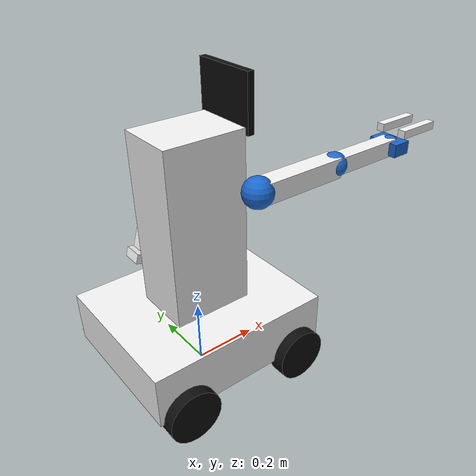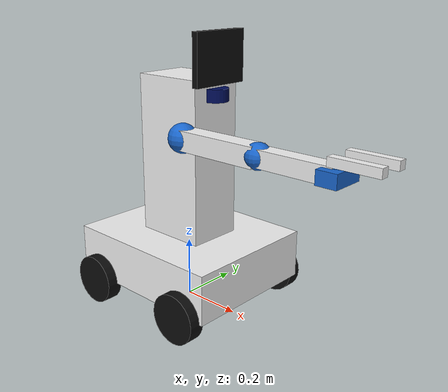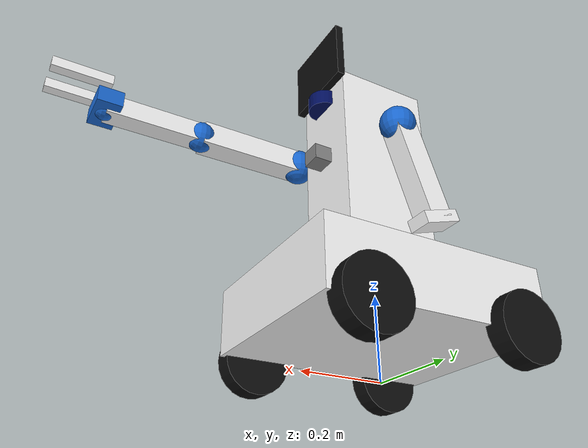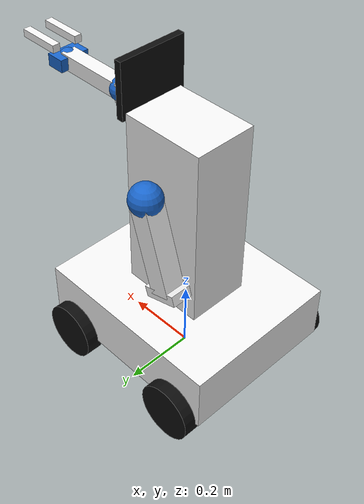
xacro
<?xml version="1.0"?>
<robot name="drift_robot" xmlns:xacro="http://www.ros.org/wiki/xacro">

  <!-- ============================================================
       MATERIAL DEFINITIONS
  ============================================================ -->
  <material name="white">
    <color rgba="0.95 0.95 0.95 1.0"/>
  </material>
  <material name="blue">
    <color rgba="0.1 0.4 0.8 1.0"/>
  </material>
  <material name="black">
    <color rgba="0.05 0.05 0.05 1.0"/>
  </material>
  <material name="gray">
    <color rgba="0.50 0.50 0.50 1.0"/>
  </material>
  <material name="dark_blue">
    <color rgba="0.0 0.05 0.35 1.0"/>
  </material>

  <!-- ============================================================
       INERTIA MACROS
  ============================================================ -->
  <!-- cx/cy/cz: centre-of-mass offset from link origin (must match visual centre) -->
  <xacro:macro name="box_inertia" params="m x y z cx:=0 cy:=0 cz:=0">
    <inertial>
      <mass value="${m}"/>
      <origin xyz="${cx} ${cy} ${cz}" rpy="0 0 0"/>
      <inertia
        ixx="${m*(y*y+z*z)/12}" ixy="0" ixz="0"
        iyy="${m*(x*x+z*z)/12}" iyz="0"
        izz="${m*(x*x+y*y)/12}"/>
    </inertial>
  </xacro:macro>

  <xacro:macro name="cylinder_inertia" params="m r h">
    <inertial>
      <mass value="${m}"/>
      <origin xyz="0 0 0" rpy="0 0 0"/>
      <inertia
        ixx="${m*(3*r*r+h*h)/12}" ixy="0" ixz="0"
        iyy="${m*(3*r*r+h*h)/12}" iyz="0"
        izz="${m*r*r/2}"/>
    </inertial>
  </xacro:macro>

  <!-- ============================================================
       BASE
  ============================================================ -->
  <link name="base_footprint"/>

  <joint name="base_footprint_joint" type="fixed">
    <parent link="base_footprint"/>
    <child  link="base_link"/>
    <!-- offset = wheel radius (0.08 m) so base_link sits at axle height
         and wheel bottoms land exactly on the ground plane -->
    <origin xyz="0 0 0.08" rpy="0 0 0"/>
  </joint>

  <!-- Chassis: 0.56 × 0.46 × 0.16 m, 23 kg -->
  <link name="base_link">
    <xacro:box_inertia m="23.0" x="0.56" y="0.46" z="0.16" cz="0.08"/>
    <visual>
      <origin xyz="0 0 0.08" rpy="0 0 0"/>
      <geometry><box size="0.56 0.46 0.16"/></geometry>
      <material name="white"/>
    </visual>
    <collision>
      <origin xyz="0 0 0.08" rpy="0 0 0"/>
      <geometry><box size="0.56 0.46 0.16"/></geometry>
    </collision>
  </link>

  <!-- ============================================================
       WHEELS  — radius 0.08 m, width 0.05 m, mass 1.6 kg
  ============================================================ -->
  <xacro:macro name="wheel" params="name x_pos y_pos">
    <link name="${name}_link">
      <xacro:cylinder_inertia m="1.6" r="0.08" h="0.05"/>
      <visual>
        <origin xyz="0 0 0" rpy="${pi/2} 0 0"/>
        <geometry><cylinder radius="0.08" length="0.05"/></geometry>
        <material name="black"/>
      </visual>
      <collision>
        <origin xyz="0 0 0" rpy="${pi/2} 0 0"/>
        <geometry><cylinder radius="0.08" length="0.05"/></geometry>
      </collision>
    </link>
    <joint name="${name}_joint" type="continuous">
      <parent link="base_link"/>
      <child  link="${name}_link"/>
      <!-- z=0: wheel centre is at base_link origin = wheel radius above ground -->
      <origin xyz="${x_pos} ${y_pos} 0" rpy="0 0 0"/>
      <axis xyz="0 1 0"/>
      <limit effort="30.0" velocity="20.0"/>
      <dynamics damping="0.2" friction="0.12"/>
    </joint>
  </xacro:macro>

  <xacro:wheel name="left_front_wheel"  x_pos=" 0.19" y_pos=" 0.24"/>
  <xacro:wheel name="right_front_wheel" x_pos=" 0.19" y_pos="-0.24"/>
  <xacro:wheel name="left_rear_wheel"   x_pos="-0.19" y_pos=" 0.24"/>
  <xacro:wheel name="right_rear_wheel"  x_pos="-0.19" y_pos="-0.24"/>

  <!-- ============================================================
       TORSO  — 0.24 × 0.18 × 0.52 m, 10 kg
  ============================================================ -->
  <link name="torso_link">
    <xacro:box_inertia m="10.0" x="0.24" y="0.18" z="0.52" cz="0.26"/>
    <visual>
      <origin xyz="0 0 0.26" rpy="0 0 0"/>
      <geometry><box size="0.24 0.18 0.52"/></geometry>
      <material name="white"/>
    </visual>
    <collision>
      <origin xyz="0 0 0.26" rpy="0 0 0"/>
      <geometry><box size="0.24 0.18 0.52"/></geometry>
    </collision>
  </link>

  <joint name="torso_joint" type="fixed">
    <parent link="base_link"/>
    <child  link="torso_link"/>
    <origin xyz="0 0 0.16" rpy="0 0 0"/>
  </joint>

  <!-- ============================================================
       FACE / DISPLAY PANEL
  ============================================================ -->
  <link name="head_panel_link">
    <xacro:box_inertia m="0.6" x="0.02" y="0.20" z="0.16"/>
    <visual>
      <origin xyz="0 0 0" rpy="0 0 0"/>
      <geometry><box size="0.02 0.20 0.16"/></geometry>
      <material name="black"/>
    </visual>
    <collision>
      <origin xyz="0 0 0" rpy="0 0 0"/>
      <geometry><box size="0.02 0.20 0.16"/></geometry>
    </collision>
  </link>

  <joint name="head_panel_joint" type="fixed">
    <parent link="torso_link"/>
    <child  link="head_panel_link"/>
    <!-- Lidar sits at Z=0.47 in torso frame (top edge Z=0.49).
         Panel bottom starts at Z=0.50, centre at Z=0.58, so it sits
         cleanly above the lidar with no overlap. -->
    <origin xyz="0.13 0 0.58" rpy="0 0 0"/>
  </joint>

  <!-- ============================================================
       CAMERA
  ============================================================ -->
  <link name="camera_link">
    <xacro:box_inertia m="0.25" x="0.05" y="0.05" z="0.04"/>
    <visual>
      <origin xyz="0 0 0" rpy="0 0 0"/>
      <geometry><box size="0.05 0.05 0.04"/></geometry>
      <material name="gray"/>
    </visual>
    <collision>
      <origin xyz="0 0 0" rpy="0 0 0"/>
      <geometry><box size="0.05 0.05 0.04"/></geometry>
    </collision>
  </link>

  <joint name="camera_joint" type="fixed">
    <parent link="torso_link"/>
    <child  link="camera_link"/>
    <origin xyz="0.14 0 0.30" rpy="0 0 0"/>
  </joint>

  <!-- Camera optical frame (ROS convention: z-forward, x-right, y-down) -->
  <link name="camera_optical_link"/>
  <joint name="camera_optical_joint" type="fixed">
    <parent link="camera_link"/>
    <child  link="camera_optical_link"/>
    <origin xyz="0 0 0" rpy="${-pi/2} 0 ${-pi/2}"/>
  </joint>

  <!-- ============================================================
       LIDAR
  ============================================================ -->
  <link name="lidar_link">
    <xacro:cylinder_inertia m="0.35" r="0.04" h="0.04"/>
    <visual>
      <origin xyz="0 0 0" rpy="0 0 0"/>
      <geometry><cylinder radius="0.04" length="0.04"/></geometry>
      <material name="dark_blue"/>
    </visual>
    <collision>
      <origin xyz="0 0 0" rpy="0 0 0"/>
      <geometry><cylinder radius="0.04" length="0.04"/></geometry>
    </collision>
  </link>

  <joint name="lidar_joint" type="fixed">
    <parent link="torso_link"/>
    <child  link="lidar_link"/>
    <origin xyz="0.12 0 0.47" rpy="0 0 0"/>
  </joint>

  <!-- ============================================================
       RIGHT ARM  — 3-DOF active arm
  ============================================================ -->

  <!-- Shoulder ball (blue) -->
  <link name="right_shoulder_link">
    <xacro:box_inertia m="1.4" x="0.08" y="0.08" z="0.08"/>
    <visual>
      <origin xyz="0 0 0" rpy="0 0 0"/>
      <geometry><sphere radius="0.045"/></geometry>
      <material name="blue"/>
    </visual>
    <collision>
      <origin xyz="0 0 0" rpy="0 0 0"/>
      <geometry><sphere radius="0.045"/></geometry>
    </collision>
  </link>

  <joint name="right_shoulder_joint" type="revolute">
    <parent link="torso_link"/>
    <child  link="right_shoulder_link"/>
    <origin xyz="0.12 -0.14 0.36" rpy="0 0 3.1416"/>
    <axis xyz="0 1 0"/>
    <limit lower="-2.4" upper="2.4" effort="20.0" velocity="1.8"/>
    <dynamics damping="1.0" friction="0.4"/>
  </joint>

  <!-- Upper arm (white) — hangs below shoulder -->
  <link name="right_upper_arm_link">
    <xacro:box_inertia m="1.5" x="0.06" y="0.06" z="0.28" cz="-0.14"/>
    <visual>
      <origin xyz="0 0 -0.14" rpy="0 0 0"/>
      <geometry><box size="0.06 0.06 0.28"/></geometry>
      <material name="white"/>
    </visual>
    <collision>
      <origin xyz="0 0 -0.14" rpy="0 0 0"/>
      <geometry><box size="0.06 0.06 0.28"/></geometry>
    </collision>
  </link>

  <!-- Elbow joint: parent frame rotated 90° in Y so the arm initially
       points straight down; spring pulls it to -1.5 rad (V elbow bend) -->
  <joint name="right_elbow_joint" type="revolute">
    <parent link="right_shoulder_link"/>
    <child  link="right_upper_arm_link"/>
    <origin xyz="0 0 0" rpy="0 1.5708 0"/>   <!-- THIS, not X rotation -->
    <axis xyz="0 1 0"/>
    <limit lower="-2.4" upper="1.4" effort="18.0" velocity="2.0"/>
    <dynamics damping="0.8" friction="0.3"/>
  </joint>

  <!-- Elbow ball (blue) — visual marker at bottom of upper arm -->
  <link name="right_elbow_vis_link">
    <xacro:cylinder_inertia m="0.05" r="0.035" h="0.04"/>
    <visual>
      <origin xyz="0 0 0" rpy="0 0 0"/>
      <geometry><sphere radius="0.038"/></geometry>
      <material name="blue"/>
    </visual>
    <collision>
      <origin xyz="0 0 0" rpy="0 0 0"/>
      <geometry><sphere radius="0.038"/></geometry>
    </collision>
  </link>

  <joint name="right_elbow_vis_joint" type="fixed">
    <parent link="right_upper_arm_link"/>
    <child  link="right_elbow_vis_link"/>
    <origin xyz="0 0 -0.28" rpy="0 0 0"/>
  </joint>

  <!-- Forearm (white) -->
  <link name="right_forearm_link">
    <xacro:box_inertia m="1.2" x="0.05" y="0.05" z="0.24" cz="-0.12"/>
    <visual>
      <origin xyz="0 0 -0.12" rpy="0 0 0"/>
      <geometry><box size="0.05 0.05 0.24"/></geometry>
      <material name="white"/>
    </visual>
    <collision>
      <origin xyz="0 0 -0.12" rpy="0 0 0"/>
      <geometry><box size="0.05 0.05 0.24"/></geometry>
    </collision>
  </link>

  <joint name="right_wrist_joint" type="revolute">
    <parent link="right_upper_arm_link"/>
    <child  link="right_forearm_link"/>
    <origin xyz="0 0 -0.28" rpy="0 0 0"/>
    <axis xyz="0 1 0"/>
    <limit lower="-2.6" upper="2.6" effort="12.0" velocity="2.4"/>
    <dynamics damping="0.5" friction="0.25"/>
  </joint>

  <!-- Wrist ball (blue) -->
  <link name="right_wrist_vis_link">
    <xacro:cylinder_inertia m="0.05" r="0.025" h="0.04"/>
    <visual>
      <origin xyz="0 0 0" rpy="0 0 0"/>
      <geometry><sphere radius="0.030"/></geometry>
      <material name="blue"/>
    </visual>
    <collision>
      <origin xyz="0 0 0" rpy="0 0 0"/>
      <geometry><sphere radius="0.030"/></geometry>
    </collision>
  </link>

  <joint name="right_wrist_vis_joint" type="fixed">
    <parent link="right_forearm_link"/>
    <child  link="right_wrist_vis_link"/>
    <origin xyz="0 0 -0.24" rpy="0 0 0"/>
  </joint>

  <!-- ============================================================
       FUNCTIONAL PARALLEL-JAW GRIPPER
  ============================================================ -->

  <!-- Gripper palm / base (blue) -->
  <link name="right_gripper_link">
    <xacro:box_inertia m="0.4" x="0.06" y="0.10" z="0.04"/>
    <visual>
      <origin xyz="0 0 0" rpy="0 0 0"/>
      <geometry><box size="0.06 0.10 0.04"/></geometry>
      <material name="blue"/>
    </visual>
    <collision>
      <origin xyz="0 0 0" rpy="0 0 0"/>
      <geometry><box size="0.06 0.10 0.04"/></geometry>
    </collision>
  </link>

  <joint name="right_gripper_joint" type="fixed">
    <parent link="right_forearm_link"/>
    <child  link="right_gripper_link"/>
    <!-- rpy pitch = pi/2 rotates the gripper palm 90° so the jaw
         opening faces outward (away from the arm) instead of downward -->
    <origin xyz="0 0 -0.24" rpy="0 ${pi/2} 0"/>
  </joint>

  <!-- Left finger — slides in +Y to open -->
  <link name="right_finger_l_link">
    <xacro:box_inertia m="0.08" x="0.14" y="0.025" z="0.025"/>
    <visual>
      <origin xyz="0.07 0 -0.025" rpy="0 0 0"/>
      <geometry><box size="0.14 0.025 0.025"/></geometry>
      <material name="white"/>
    </visual>
    <collision>
      <origin xyz="0.07 0 -0.025" rpy="0 0 0"/>
      <geometry><box size="0.14 0.025 0.025"/></geometry>
    </collision>
  </link>

  <joint name="right_finger_l_joint" type="prismatic">
    <parent link="right_gripper_link"/>
    <child  link="right_finger_l_link"/>
    <origin xyz="0  0.04 -0.02" rpy="0 0 0"/>
    <axis xyz="0 1 0"/>
    <limit lower="0.0" upper="0.05" effort="10.0" velocity="0.1"/>
    <dynamics damping="5.0" friction="1.0"/>
  </joint>

  <!-- Right finger — slides in -Y to open -->
  <link name="right_finger_r_link">
    <xacro:box_inertia m="0.08" x="0.14" y="0.025" z="0.025"/>
    <visual>
      <origin xyz="0.07 0 -0.025" rpy="0 0 0"/>
      <geometry><box size="0.14 0.025 0.025"/></geometry>
      <material name="white"/>
    </visual>
    <collision>
      <origin xyz="0.07 0 -0.025" rpy="0 0 0"/>
      <geometry><box size="0.14 0.025 0.025"/></geometry>
    </collision>
  </link>

  <joint name="right_finger_r_joint" type="prismatic">
    <parent link="right_gripper_link"/>
    <child  link="right_finger_r_link"/>
    <origin xyz="0 -0.04 -0.02" rpy="0 0 0"/>
    <axis xyz="0 -1 0"/>
    <limit lower="0.0" upper="0.05" effort="10.0" velocity="0.1"/>
    <dynamics damping="5.0" friction="1.0"/>
  </joint>

  <!-- ============================================================
       LEFT ARM  — cosmetic / static (mirrored)
  ============================================================ -->
  <link name="left_arm_cosmetic_link">
    <xacro:box_inertia m="1.4" x="0.06" y="0.06" z="0.26" cz="-0.13"/>
    <visual>
      <origin xyz="0 0 -0.13" rpy="0 0 0"/>
      <geometry><box size="0.06 0.06 0.26"/></geometry>
      <material name="white"/>
    </visual>
    <collision>
      <origin xyz="0 0 -0.13" rpy="0 0 0"/>
      <geometry><box size="0.06 0.06 0.26"/></geometry>
    </collision>
  </link>

  <!-- Left shoulder ball (blue) -->
  <link name="left_shoulder_vis_link">
    <xacro:cylinder_inertia m="0.1" r="0.04" h="0.08"/>
    <visual>
      <origin xyz="0 0 0" rpy="0 0 0"/>
      <geometry><sphere radius="0.045"/></geometry>
      <material name="blue"/>
    </visual>
    <collision>
      <origin xyz="0 0 0" rpy="0 0 0"/>
      <geometry><sphere radius="0.045"/></geometry>
    </collision>
  </link>

  <joint name="left_shoulder_vis_joint" type="fixed">
    <parent link="torso_link"/>
    <child  link="left_shoulder_vis_link"/>
    <origin xyz="0 0.14 0.36" rpy="0 0 0"/>
  </joint>

  <joint name="left_arm_cosmetic_joint" type="fixed">
    <parent link="left_shoulder_vis_link"/>
    <child  link="left_arm_cosmetic_link"/>
    <!-- Slight V-angle to match right arm aesthetic -->
    <origin xyz="0 0 0" rpy="0 0.3 0"/>
  </joint>

  <!-- Left hand (white) -->
  <link name="left_hand_link">
    <xacro:box_inertia m="0.2" x="0.10" y="0.06" z="0.03"/>
    <visual>
      <origin xyz="0 0 0" rpy="0 0 0"/>
      <geometry><box size="0.10 0.06 0.03"/></geometry>
      <material name="white"/>
    </visual>
    <collision>
      <origin xyz="0 0 0" rpy="0 0 0"/>
      <geometry><box size="0.10 0.06 0.03"/></geometry>
    </collision>
  </link>

  <joint name="left_hand_joint" type="fixed">
    <parent link="left_arm_cosmetic_link"/>
    <child  link="left_hand_link"/>
    <origin xyz="0 0 -0.26" rpy="0 0 0"/>
  </joint>

  <!-- ============================================================
       GAZEBO: WHEEL FRICTION
  ============================================================ -->
  <gazebo reference="left_front_wheel_link"><mu1>1.1</mu1><mu2>1.1</mu2><kp>1e6</kp><kd>1.0</kd></gazebo>
  <gazebo reference="right_front_wheel_link"><mu1>1.1</mu1><mu2>1.1</mu2><kp>1e6</kp><kd>1.0</kd></gazebo>
  <gazebo reference="left_rear_wheel_link"><mu1>1.1</mu1><mu2>1.1</mu2><kp>1e6</kp><kd>1.0</kd></gazebo>
  <gazebo reference="right_rear_wheel_link"><mu1>1.1</mu1><mu2>1.1</mu2><kp>1e6</kp><kd>1.0</kd></gazebo>

  <!-- ============================================================
       GAZEBO: DRIVE PLUGIN
  ============================================================ -->

  <!-- Front axle: publishes /odom + TF -->
  <gazebo>
    <plugin name="diff_drive_front" filename="libgazebo_ros_diff_drive.so">
      <ros><namespace>/</namespace></ros>
      <left_joint>left_front_wheel_joint</left_joint>
      <right_joint>right_front_wheel_joint</right_joint>
      <wheel_separation>0.48</wheel_separation>
      <wheel_diameter>0.16</wheel_diameter>
      <max_wheel_torque>28</max_wheel_torque>
      <max_wheel_acceleration>2.0</max_wheel_acceleration>
      <command_topic>cmd_vel</command_topic>
      <odometry_topic>odom</odometry_topic>
      <odometry_frame>odom</odometry_frame>
      <robot_base_frame>base_footprint</robot_base_frame>
      <publish_odom>true</publish_odom>
      <publish_odom_tf>true</publish_odom_tf>
      <publish_wheel_tf>false</publish_wheel_tf>
      <update_rate>50</update_rate>
    </plugin>
  </gazebo>

  <!-- Rear axle: follows same cmd_vel, no duplicate odom/TF -->
  <gazebo>
    <plugin name="diff_drive_rear" filename="libgazebo_ros_diff_drive.so">
      <ros><namespace>/</namespace></ros>
      <left_joint>left_rear_wheel_joint</left_joint>
      <right_joint>right_rear_wheel_joint</right_joint>
      <wheel_separation>0.48</wheel_separation>
      <wheel_diameter>0.16</wheel_diameter>
      <max_wheel_torque>28</max_wheel_torque>
      <max_wheel_acceleration>2.0</max_wheel_acceleration>
      <command_topic>cmd_vel</command_topic>
      <odometry_topic>odom_rear</odometry_topic>
      <odometry_frame>odom</odometry_frame>
      <robot_base_frame>base_footprint</robot_base_frame>
      <publish_odom>false</publish_odom>
      <publish_odom_tf>false</publish_odom_tf>
      <publish_wheel_tf>false</publish_wheel_tf>
      <update_rate>50</update_rate>
    </plugin>
  </gazebo>

  <!-- ============================================================
       GAZEBO: CAMERA SENSOR
  ============================================================ -->
  <gazebo reference="camera_link">
    <sensor name="front_camera_sensor" type="camera">
      <always_on>true</always_on>
      <update_rate>15.0</update_rate>
      <camera>
        <horizontal_fov>1.2217</horizontal_fov>
        <image>
          <width>640</width>
          <height>480</height>
          <format>R8G8B8</format>
        </image>
        <clip>
          <near>0.05</near>
          <far>25.0</far>
        </clip>
      </camera>
      <plugin name="gazebo_ros_camera" filename="libgazebo_ros_camera.so">
        <ros>
          <namespace>/</namespace>
          <remapping>image_raw:=camera/image_raw</remapping>
          <remapping>camera_info:=camera/camera_info</remapping>
        </ros>
        <frame_name>camera_optical_link</frame_name>
        <camera_name>torso_camera</camera_name>
      </plugin>
    </sensor>
  </gazebo>

  <!-- ============================================================
       GAZEBO: LIDAR SENSOR
  ============================================================ -->
  <gazebo reference="lidar_link">
    <sensor name="lidar_sensor" type="ray">
      <always_on>true</always_on>
      <update_rate>12.0</update_rate>
      <ray>
        <scan>
          <horizontal>
            <samples>720</samples>
            <resolution>1</resolution>
            <min_angle>-1.5708</min_angle>
            <max_angle>1.5708</max_angle>
          </horizontal>
        </scan>
        <range>
          <min>0.12</min>
          <max>10.0</max>
          <resolution>0.01</resolution>
        </range>
      </ray>
      <plugin name="gazebo_ros_lidar" filename="libgazebo_ros_ray_sensor.so">
        <output_type>sensor_msgs/LaserScan</output_type>
        <frame_name>lidar_link</frame_name>
        <topic_name>scan</topic_name>
      </plugin>
    </sensor>
  </gazebo>

  <!-- ============================================================
       GAZEBO: JOINT STATE PUBLISHER
  ============================================================ -->
  <gazebo>
    <plugin name="joint_state_publisher" filename="libgazebo_ros_joint_state_publisher.so">
      <ros>
        <namespace>/</namespace>
        <remapping>~/out:=joint_states</remapping>
      </ros>
      <update_rate>50</update_rate>
      <joint_name>right_shoulder_joint</joint_name>
      <joint_name>right_elbow_joint</joint_name>
      <joint_name>right_wrist_joint</joint_name>
      <joint_name>right_finger_l_joint</joint_name>
      <joint_name>right_finger_r_joint</joint_name>
      <joint_name>left_front_wheel_joint</joint_name>
      <joint_name>right_front_wheel_joint</joint_name>
      <joint_name>left_rear_wheel_joint</joint_name>
      <joint_name>right_rear_wheel_joint</joint_name>
    </plugin>
  </gazebo>

  <!-- ============================================================
       GAZEBO: ARM + GRIPPER TRAJECTORY CONTROLLER
  ============================================================ -->
  <gazebo>
    <plugin name="arm_trajectory_controller"
            filename="libgazebo_ros_joint_pose_trajectory.so">
      <ros>
        <namespace>/</namespace>
        <remapping>~/in:=arm_trajectory</remapping>
      </ros>
      <update_rate>50</update_rate>
      <frame_id>base_footprint</frame_id>
    </plugin>
  </gazebo>

  <!-- ============================================================
       GAZEBO: V-POSE SPRING DAMPERS  (arm rests in V at startup)
  ============================================================ -->
<gazebo reference="right_shoulder_joint">
  <implicitSpringDamper>true</implicitSpringDamper>
  <springStiffness>50.0</springStiffness>
  <springReference>0.8</springReference>  <!-- forward, not sideways -->
</gazebo>

<gazebo reference="right_elbow_joint">
  <implicitSpringDamper>true</implicitSpringDamper>
  <springStiffness>50.0</springStiffness>
  <springReference>-1.4</springReference>  <!-- bend elbow -->
</gazebo>

<gazebo reference="right_wrist_joint">
  <implicitSpringDamper>true</implicitSpringDamper>
  <springStiffness>50.0</springStiffness>
  <springReference>0.6</springReference>   <!-- bring hand forward -->
</gazebo>

  <!-- Fingers: light spring, stay closed -->
  <gazebo reference="right_finger_l_joint">
    <implicitSpringDamper>true</implicitSpringDamper>
    <springStiffness>5</springStiffness>
    <springReference>0.0</springReference>
  </gazebo>

  <gazebo reference="right_finger_r_joint">
    <implicitSpringDamper>true</implicitSpringDamper>
    <springStiffness>5</springStiffness>
    <springReference>0.0</springReference>
  </gazebo>

  <!-- ============================================================
       GAZEBO: VISUAL MATERIAL COLOURS
  ============================================================ -->

  <!-- Body — white, self_collide disabled so arm never causes physics explosion -->
  <gazebo reference="base_link"><self_collide>false</self_collide><material>Gazebo/White</material></gazebo>
  <gazebo reference="torso_link"><self_collide>false</self_collide><material>Gazebo/White</material></gazebo>
  <gazebo reference="left_arm_cosmetic_link"><self_collide>false</self_collide><material>Gazebo/White</material></gazebo>
  <gazebo reference="left_hand_link"><self_collide>false</self_collide><material>Gazebo/White</material></gazebo>

  <!-- Active arm — self_collide disabled on every link -->
  <gazebo reference="right_shoulder_link"><self_collide>false</self_collide><material>Gazebo/Blue</material></gazebo>
  <gazebo reference="right_upper_arm_link"><self_collide>false</self_collide><material>Gazebo/White</material></gazebo>
  <gazebo reference="right_elbow_vis_link"><self_collide>false</self_collide><material>Gazebo/Blue</material></gazebo>
  <gazebo reference="right_forearm_link"><self_collide>false</self_collide><material>Gazebo/White</material></gazebo>
  <gazebo reference="right_wrist_vis_link"><self_collide>false</self_collide><material>Gazebo/Blue</material></gazebo>
  <gazebo reference="right_gripper_link"><self_collide>false</self_collide><material>Gazebo/Blue</material></gazebo>
  <gazebo reference="right_finger_l_link"><self_collide>false</self_collide><material>Gazebo/White</material></gazebo>
  <gazebo reference="right_finger_r_link"><self_collide>false</self_collide><material>Gazebo/White</material></gazebo>

  <!-- Left shoulder vis — self_collide disabled -->
  <gazebo reference="left_shoulder_vis_link"><self_collide>false</self_collide><material>Gazebo/Blue</material></gazebo>

  <!-- Wheels — black -->
  <gazebo reference="left_front_wheel_link"><material>Gazebo/Black</material></gazebo>
  <gazebo reference="right_front_wheel_link"><material>Gazebo/Black</material></gazebo>
  <gazebo reference="left_rear_wheel_link"><material>Gazebo/Black</material></gazebo>
  <gazebo reference="right_rear_wheel_link"><material>Gazebo/Black</material></gazebo>

  <!-- Display — black -->
  <gazebo reference="head_panel_link"><material>Gazebo/FlatBlack</material></gazebo>

  <!-- Camera — grey -->
  <gazebo reference="camera_link"><material>Gazebo/Grey</material></gazebo>

  <!-- LiDAR — dark blue (custom ambient/diffuse override) -->
  <gazebo reference="lidar_link">
    <visual>
      <material>
        <ambient>0.0 0.0 0.35 1.0</ambient>
        <diffuse>0.0 0.05 0.50 1.0</diffuse>
        <specular>0.05 0.05 0.20 1.0</specular>
        <emissive>0.0 0.0 0.0 1.0</emissive>
      </material>
    </visual>
  </gazebo>

</robot>
